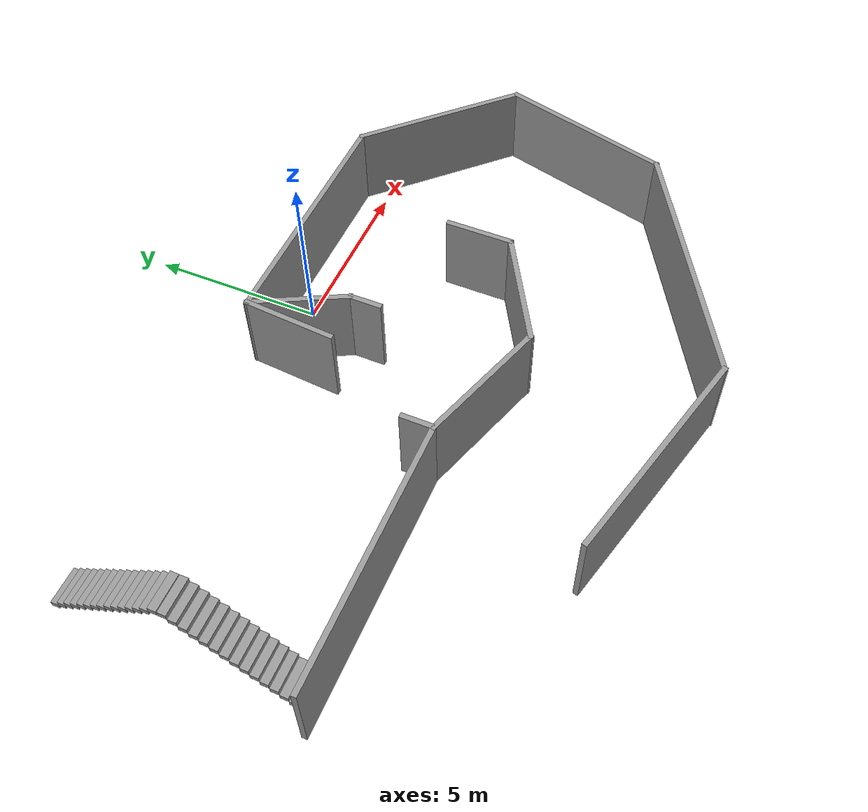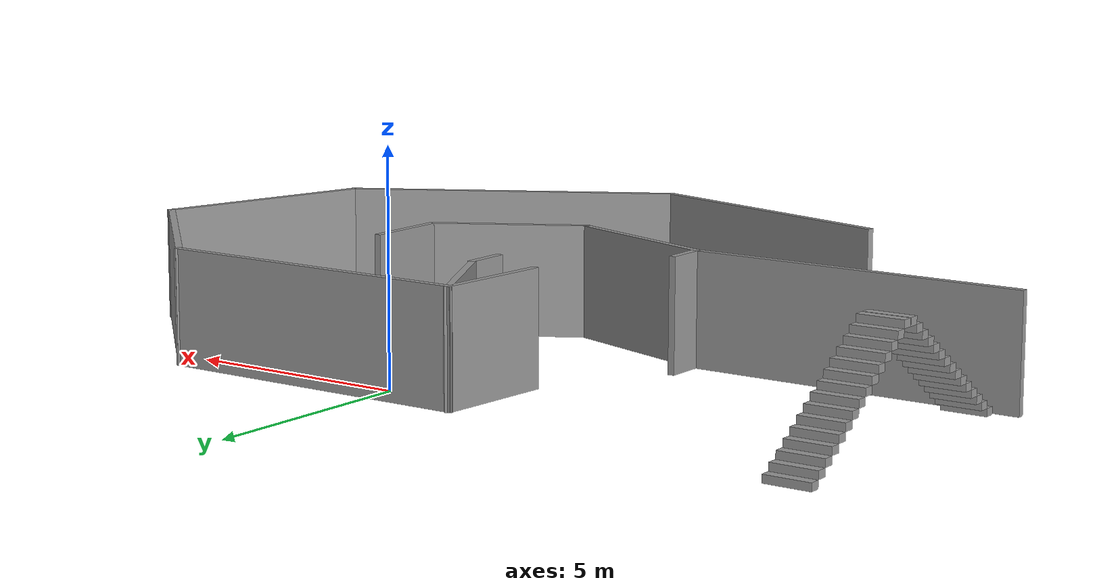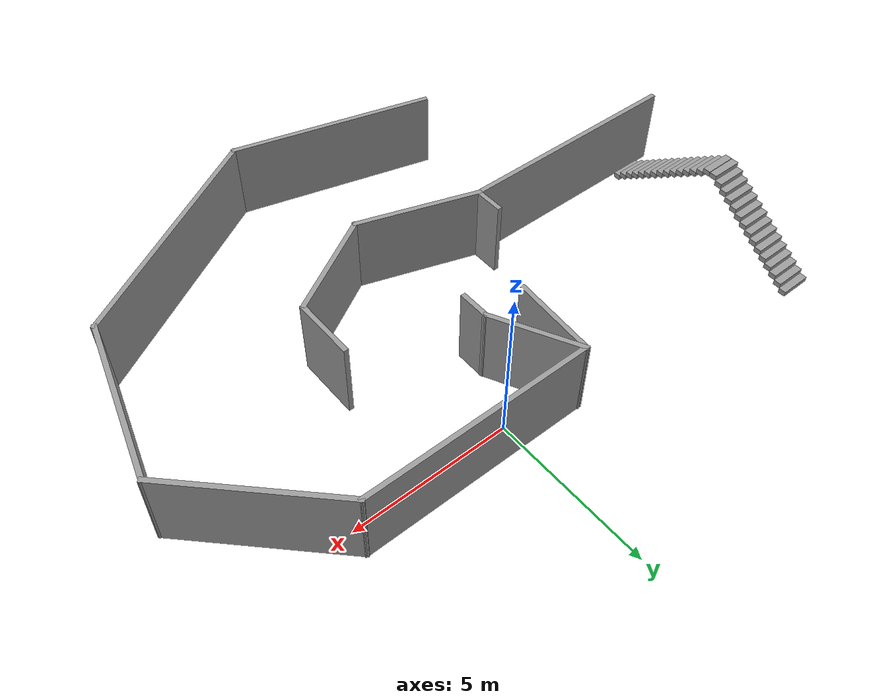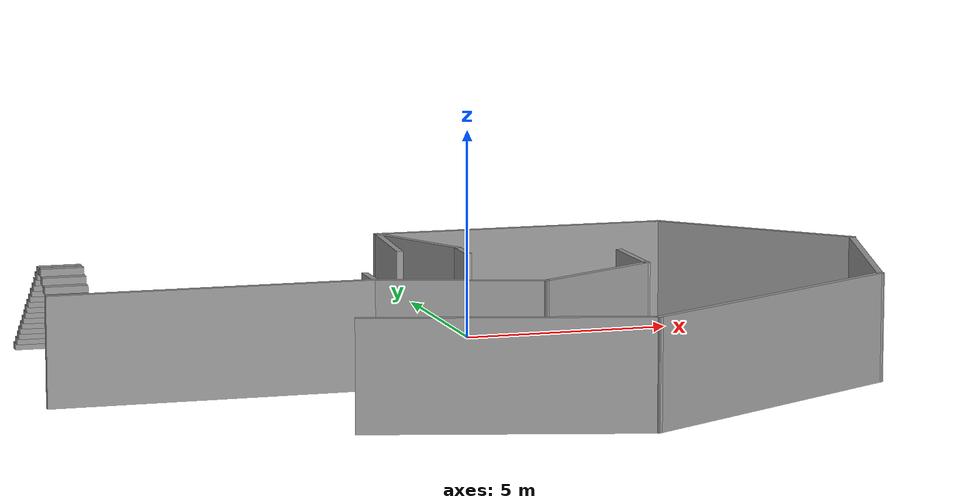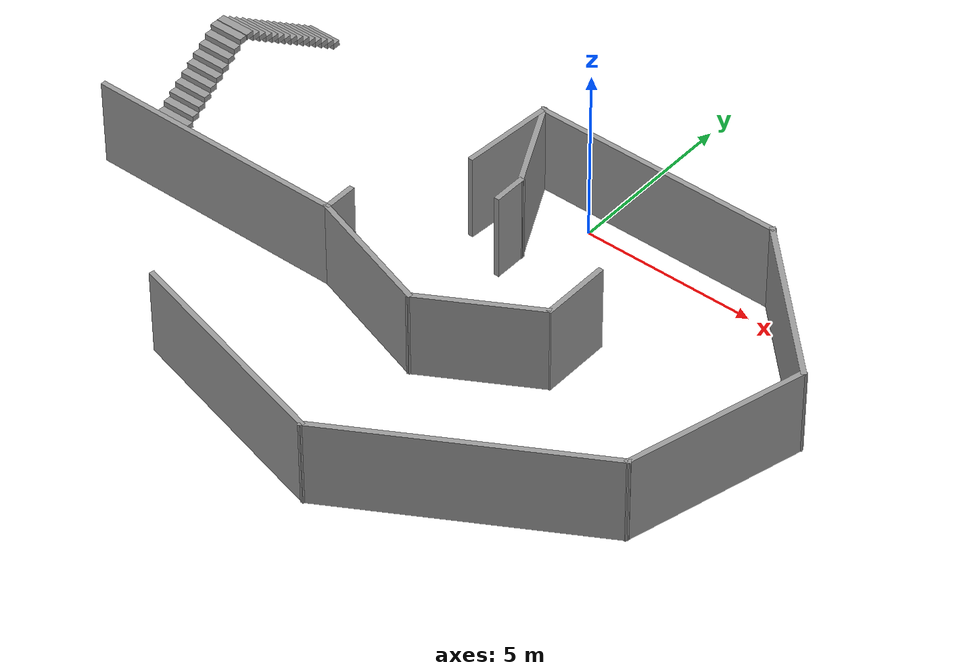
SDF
<?xml version='1.0'?>
<sdf version='1.6'>
  <model name='maze_loop'>
    <pose frame=''>-1.21134 -5.02746 0 0 -0 0</pose>
    <link name='Stairs_0'>
      <visual name='Stairs_0_Visual_0'>
        <pose frame=''>-8.96866 6.60079 0.083333 0 -0 0</pose>
        <geometry>
          <box>
            <size>1 0.233333 0.166667</size>
          </box>
        </geometry>
        <material>
          <script>
            <uri>file://media/materials/scripts/gazebo.material</uri>
            <name>Gazebo/Grey</name>
          </script>
          <ambient>1 1 1 1</ambient>
        </material>
        <meta>
          <layer>0</layer>
        </meta>
      </visual>
      <collision name='Stairs_0_Collision_0'>
        <geometry>
          <box>
            <size>1 0.233333 0.166667</size>
          </box>
        </geometry>
        <pose frame=''>-8.96866 6.60079 0.083333 0 -0 0</pose>
      </collision>
      <visual name='Stairs_0_Visual_1'>
        <pose frame=''>-8.96866 6.36746 0.25 0 -0 0</pose>
        <geometry>
          <box>
            <size>1 0.233333 0.166667</size>
          </box>
        </geometry>
        <material>
          <script>
            <uri>file://media/materials/scripts/gazebo.material</uri>
            <name>Gazebo/Grey</name>
          </script>
          <ambient>1 1 1 1</ambient>
        </material>
        <meta>
          <layer>0</layer>
        </meta>
      </visual>
      <collision name='Stairs_0_Collision_1'>
        <geometry>
          <box>
            <size>1 0.233333 0.166667</size>
          </box>
        </geometry>
        <pose frame=''>-8.96866 6.36746 0.25 0 -0 0</pose>
      </collision>
      <visual name='Stairs_0_Visual_2'>
        <pose frame=''>-8.96866 6.13413 0.416667 0 -0 0</pose>
        <geometry>
          <box>
            <size>1 0.233333 0.166667</size>
          </box>
        </geometry>
        <material>
          <script>
            <uri>file://media/materials/scripts/gazebo.material</uri>
            <name>Gazebo/Grey</name>
          </script>
          <ambient>1 1 1 1</ambient>
        </material>
        <meta>
          <layer>0</layer>
        </meta>
      </visual>
      <collision name='Stairs_0_Collision_2'>
        <geometry>
          <box>
            <size>1 0.233333 0.166667</size>
          </box>
        </geometry>
        <pose frame=''>-8.96866 6.13413 0.416667 0 -0 0</pose>
      </collision>
      <visual name='Stairs_0_Visual_3'>
        <pose frame=''>-8.96866 5.90079 0.583333 0 -0 0</pose>
        <geometry>
          <box>
            <size>1 0.233333 0.166667</size>
          </box>
        </geometry>
        <material>
          <script>
            <uri>file://media/materials/scripts/gazebo.material</uri>
            <name>Gazebo/Grey</name>
          </script>
          <ambient>1 1 1 1</ambient>
        </material>
        <meta>
          <layer>0</layer>
        </meta>
      </visual>
      <collision name='Stairs_0_Collision_3'>
        <geometry>
          <box>
            <size>1 0.233333 0.166667</size>
          </box>
        </geometry>
        <pose frame=''>-8.96866 5.90079 0.583333 0 -0 0</pose>
      </collision>
      <visual name='Stairs_0_Visual_4'>
        <pose frame=''>-8.96866 5.66746 0.75 0 -0 0</pose>
        <geometry>
          <box>
            <size>1 0.233333 0.166667</size>
          </box>
        </geometry>
        <material>
          <script>
            <uri>file://media/materials/scripts/gazebo.material</uri>
            <name>Gazebo/Grey</name>
          </script>
          <ambient>1 1 1 1</ambient>
        </material>
        <meta>
          <layer>0</layer>
        </meta>
      </visual>
      <collision name='Stairs_0_Collision_4'>
        <geometry>
          <box>
            <size>1 0.233333 0.166667</size>
          </box>
        </geometry>
        <pose frame=''>-8.96866 5.66746 0.75 0 -0 0</pose>
      </collision>
      <visual name='Stairs_0_Visual_5'>
        <pose frame=''>-8.96866 5.43413 0.916667 0 -0 0</pose>
        <geometry>
          <box>
            <size>1 0.233333 0.166667</size>
          </box>
        </geometry>
        <material>
          <script>
            <uri>file://media/materials/scripts/gazebo.material</uri>
            <name>Gazebo/Grey</name>
          </script>
          <ambient>1 1 1 1</ambient>
        </material>
        <meta>
          <layer>0</layer>
        </meta>
      </visual>
      <collision name='Stairs_0_Collision_5'>
        <geometry>
          <box>
            <size>1 0.233333 0.166667</size>
          </box>
        </geometry>
        <pose frame=''>-8.96866 5.43413 0.916667 0 -0 0</pose>
      </collision>
      <visual name='Stairs_0_Visual_6'>
        <pose frame=''>-8.96866 5.20079 1.08333 0 -0 0</pose>
        <geometry>
          <box>
            <size>1 0.233333 0.166667</size>
          </box>
        </geometry>
        <material>
          <script>
            <uri>file://media/materials/scripts/gazebo.material</uri>
            <name>Gazebo/Grey</name>
          </script>
          <ambient>1 1 1 1</ambient>
        </material>
        <meta>
          <layer>0</layer>
        </meta>
      </visual>
      <collision name='Stairs_0_Collision_6'>
        <geometry>
          <box>
            <size>1 0.233333 0.166667</size>
          </box>
        </geometry>
        <pose frame=''>-8.96866 5.20079 1.08333 0 -0 0</pose>
      </collision>
      <visual name='Stairs_0_Visual_7'>
        <pose frame=''>-8.96866 4.96746 1.25 0 -0 0</pose>
        <geometry>
          <box>
            <size>1 0.233333 0.166667</size>
          </box>
        </geometry>
        <material>
          <script>
            <uri>file://media/materials/scripts/gazebo.material</uri>
            <name>Gazebo/Grey</name>
          </script>
          <ambient>1 1 1 1</ambient>
        </material>
        <meta>
          <layer>0</layer>
        </meta>
      </visual>
      <collision name='Stairs_0_Collision_7'>
        <geometry>
          <box>
            <size>1 0.233333 0.166667</size>
          </box>
        </geometry>
        <pose frame=''>-8.96866 4.96746 1.25 0 -0 0</pose>
      </collision>
      <visual name='Stairs_0_Visual_8'>
        <pose frame=''>-8.96866 4.73413 1.41667 0 -0 0</pose>
        <geometry>
          <box>
            <size>1 0.233333 0.166667</size>
          </box>
        </geometry>
        <material>
          <script>
            <uri>file://media/materials/scripts/gazebo.material</uri>
            <name>Gazebo/Grey</name>
          </script>
          <ambient>1 1 1 1</ambient>
        </material>
        <meta>
          <layer>0</layer>
        </meta>
      </visual>
      <collision name='Stairs_0_Collision_8'>
        <geometry>
          <box>
            <size>1 0.233333 0.166667</size>
          </box>
        </geometry>
        <pose frame=''>-8.96866 4.73413 1.41667 0 -0 0</pose>
      </collision>
      <visual name='Stairs_0_Visual_9'>
        <pose frame=''>-8.96866 4.50079 1.58333 0 -0 0</pose>
        <geometry>
          <box>
            <size>1 0.233333 0.166667</size>
          </box>
        </geometry>
        <material>
          <script>
            <uri>file://media/materials/scripts/gazebo.material</uri>
            <name>Gazebo/Grey</name>
          </script>
          <ambient>1 1 1 1</ambient>
        </material>
        <meta>
          <layer>0</layer>
        </meta>
      </visual>
      <collision name='Stairs_0_Collision_9'>
        <geometry>
          <box>
            <size>1 0.233333 0.166667</size>
          </box>
        </geometry>
        <pose frame=''>-8.96866 4.50079 1.58333 0 -0 0</pose>
      </collision>
      <visual name='Stairs_0_Visual_10'>
        <pose frame=''>-8.96866 4.26746 1.75 0 -0 0</pose>
        <geometry>
          <box>
            <size>1 0.233333 0.166667</size>
          </box>
        </geometry>
        <material>
          <script>
            <uri>file://media/materials/scripts/gazebo.material</uri>
            <name>Gazebo/Grey</name>
          </script>
          <ambient>1 1 1 1</ambient>
        </material>
        <meta>
          <layer>0</layer>
        </meta>
      </visual>
      <collision name='Stairs_0_Collision_10'>
        <geometry>
          <box>
            <size>1 0.233333 0.166667</size>
          </box>
        </geometry>
        <pose frame=''>-8.96866 4.26746 1.75 0 -0 0</pose>
      </collision>
      <visual name='Stairs_0_Visual_11'>
        <pose frame=''>-8.96866 4.03413 1.91667 0 -0 0</pose>
        <geometry>
          <box>
            <size>1 0.233333 0.166667</size>
          </box>
        </geometry>
        <material>
          <script>
            <uri>file://media/materials/scripts/gazebo.material</uri>
            <name>Gazebo/Grey</name>
          </script>
          <ambient>1 1 1 1</ambient>
        </material>
        <meta>
          <layer>0</layer>
        </meta>
      </visual>
      <collision name='Stairs_0_Collision_11'>
        <geometry>
          <box>
            <size>1 0.233333 0.166667</size>
          </box>
        </geometry>
        <pose frame=''>-8.96866 4.03413 1.91667 0 -0 0</pose>
      </collision>
      <visual name='Stairs_0_Visual_12'>
        <pose frame=''>-8.96866 3.80079 2.08333 0 -0 0</pose>
        <geometry>
          <box>
            <size>1 0.233333 0.166667</size>
          </box>
        </geometry>
        <material>
          <script>
            <uri>file://media/materials/scripts/gazebo.material</uri>
            <name>Gazebo/Grey</name>
          </script>
          <ambient>1 1 1 1</ambient>
        </material>
        <meta>
          <layer>0</layer>
        </meta>
      </visual>
      <collision name='Stairs_0_Collision_12'>
        <geometry>
          <box>
            <size>1 0.233333 0.166667</size>
          </box>
        </geometry>
        <pose frame=''>-8.96866 3.80079 2.08333 0 -0 0</pose>
      </collision>
      <visual name='Stairs_0_Visual_13'>
        <pose frame=''>-8.96866 3.56746 2.25 0 -0 0</pose>
        <geometry>
          <box>
            <size>1 0.233333 0.166667</size>
          </box>
        </geometry>
        <material>
          <script>
            <uri>file://media/materials/scripts/gazebo.material</uri>
            <name>Gazebo/Grey</name>
          </script>
          <ambient>1 1 1 1</ambient>
        </material>
        <meta>
          <layer>0</layer>
        </meta>
      </visual>
      <collision name='Stairs_0_Collision_13'>
        <geometry>
          <box>
            <size>1 0.233333 0.166667</size>
          </box>
        </geometry>
        <pose frame=''>-8.96866 3.56746 2.25 0 -0 0</pose>
      </collision>
      <visual name='Stairs_0_Visual_14'>
        <pose frame=''>-8.96866 3.33413 2.41667 0 -0 0</pose>
        <geometry>
          <box>
            <size>1 0.233333 0.166667</size>
          </box>
        </geometry>
        <material>
          <script>
            <uri>file://media/materials/scripts/gazebo.material</uri>
            <name>Gazebo/Grey</name>
          </script>
          <ambient>1 1 1 1</ambient>
        </material>
        <meta>
          <layer>0</layer>
        </meta>
      </visual>
      <collision name='Stairs_0_Collision_14'>
        <geometry>
          <box>
            <size>1 0.233333 0.166667</size>
          </box>
        </geometry>
        <pose frame=''>-8.96866 3.33413 2.41667 0 -0 0</pose>
      </collision>
    </link>
    <link name='Stairs_1'>
      <visual name='Stairs_1_Visual_0'>
        <pose frame=''>-8.96866 -0.185874 0.083333 0 -0 -3.14159</pose>
        <geometry>
          <box>
            <size>1 0.233333 0.166667</size>
          </box>
        </geometry>
        <material>
          <script>
            <uri>file://media/materials/scripts/gazebo.material</uri>
            <name>Gazebo/Grey</name>
          </script>
          <ambient>1 1 1 1</ambient>
        </material>
        <meta>
          <layer>0</layer>
        </meta>
      </visual>
      <collision name='Stairs_1_Collision_0'>
        <geometry>
          <box>
            <size>1 0.233333 0.166667</size>
          </box>
        </geometry>
        <pose frame=''>-8.96866 -0.185874 0.083333 0 -0 -3.14159</pose>
      </collision>
      <visual name='Stairs_1_Visual_1'>
        <pose frame=''>-8.96866 0.047459 0.25 0 -0 -3.14159</pose>
        <geometry>
          <box>
            <size>1 0.233333 0.166667</size>
          </box>
        </geometry>
        <material>
          <script>
            <uri>file://media/materials/scripts/gazebo.material</uri>
            <name>Gazebo/Grey</name>
          </script>
          <ambient>1 1 1 1</ambient>
        </material>
        <meta>
          <layer>0</layer>
        </meta>
      </visual>
      <collision name='Stairs_1_Collision_1'>
        <geometry>
          <box>
            <size>1 0.233333 0.166667</size>
          </box>
        </geometry>
        <pose frame=''>-8.96866 0.047459 0.25 0 -0 -3.14159</pose>
      </collision>
      <visual name='Stairs_1_Visual_2'>
        <pose frame=''>-8.96866 0.280792 0.416667 0 -0 -3.14159</pose>
        <geometry>
          <box>
            <size>1 0.233333 0.166667</size>
          </box>
        </geometry>
        <material>
          <script>
            <uri>file://media/materials/scripts/gazebo.material</uri>
            <name>Gazebo/Grey</name>
          </script>
          <ambient>1 1 1 1</ambient>
        </material>
        <meta>
          <layer>0</layer>
        </meta>
      </visual>
      <collision name='Stairs_1_Collision_2'>
        <geometry>
          <box>
            <size>1 0.233333 0.166667</size>
          </box>
        </geometry>
        <pose frame=''>-8.96866 0.280792 0.416667 0 -0 -3.14159</pose>
      </collision>
      <visual name='Stairs_1_Visual_3'>
        <pose frame=''>-8.96866 0.514126 0.583333 0 -0 -3.14159</pose>
        <geometry>
          <box>
            <size>1 0.233333 0.166667</size>
          </box>
        </geometry>
        <material>
          <script>
            <uri>file://media/materials/scripts/gazebo.material</uri>
            <name>Gazebo/Grey</name>
          </script>
          <ambient>1 1 1 1</ambient>
        </material>
        <meta>
          <layer>0</layer>
        </meta>
      </visual>
      <collision name='Stairs_1_Collision_3'>
        <geometry>
          <box>
            <size>1 0.233333 0.166667</size>
          </box>
        </geometry>
        <pose frame=''>-8.96866 0.514126 0.583333 0 -0 -3.14159</pose>
      </collision>
      <visual name='Stairs_1_Visual_4'>
        <pose frame=''>-8.96866 0.74746 0.75 0 -0 -3.14159</pose>
        <geometry>
          <box>
            <size>1 0.233333 0.166667</size>
          </box>
        </geometry>
        <material>
          <script>
            <uri>file://media/materials/scripts/gazebo.material</uri>
            <name>Gazebo/Grey</name>
          </script>
          <ambient>1 1 1 1</ambient>
        </material>
        <meta>
          <layer>0</layer>
        </meta>
      </visual>
      <collision name='Stairs_1_Collision_4'>
        <geometry>
          <box>
            <size>1 0.233333 0.166667</size>
          </box>
        </geometry>
        <pose frame=''>-8.96866 0.74746 0.75 0 -0 -3.14159</pose>
      </collision>
      <visual name='Stairs_1_Visual_5'>
        <pose frame=''>-8.96866 0.980793 0.916667 0 -0 -3.14159</pose>
        <geometry>
          <box>
            <size>1 0.233333 0.166667</size>
          </box>
        </geometry>
        <material>
          <script>
            <uri>file://media/materials/scripts/gazebo.material</uri>
            <name>Gazebo/Grey</name>
          </script>
          <ambient>1 1 1 1</ambient>
        </material>
        <meta>
          <layer>0</layer>
        </meta>
      </visual>
      <collision name='Stairs_1_Collision_5'>
        <geometry>
          <box>
            <size>1 0.233333 0.166667</size>
          </box>
        </geometry>
        <pose frame=''>-8.96866 0.980793 0.916667 0 -0 -3.14159</pose>
      </collision>
      <visual name='Stairs_1_Visual_6'>
        <pose frame=''>-8.96866 1.21413 1.08333 0 -0 -3.14159</pose>
        <geometry>
          <box>
            <size>1 0.233333 0.166667</size>
          </box>
        </geometry>
        <material>
          <script>
            <uri>file://media/materials/scripts/gazebo.material</uri>
            <name>Gazebo/Grey</name>
          </script>
          <ambient>1 1 1 1</ambient>
        </material>
        <meta>
          <layer>0</layer>
        </meta>
      </visual>
      <collision name='Stairs_1_Collision_6'>
        <geometry>
          <box>
            <size>1 0.233333 0.166667</size>
          </box>
        </geometry>
        <pose frame=''>-8.96866 1.21413 1.08333 0 -0 -3.14159</pose>
      </collision>
      <visual name='Stairs_1_Visual_7'>
        <pose frame=''>-8.96866 1.44746 1.25 0 -0 -3.14159</pose>
        <geometry>
          <box>
            <size>1 0.233333 0.166667</size>
          </box>
        </geometry>
        <material>
          <script>
            <uri>file://media/materials/scripts/gazebo.material</uri>
            <name>Gazebo/Grey</name>
          </script>
          <ambient>1 1 1 1</ambient>
        </material>
        <meta>
          <layer>0</layer>
        </meta>
      </visual>
      <collision name='Stairs_1_Collision_7'>
        <geometry>
          <box>
            <size>1 0.233333 0.166667</size>
          </box>
        </geometry>
        <pose frame=''>-8.96866 1.44746 1.25 0 -0 -3.14159</pose>
      </collision>
      <visual name='Stairs_1_Visual_8'>
        <pose frame=''>-8.96866 1.68079 1.41667 0 -0 -3.14159</pose>
        <geometry>
          <box>
            <size>1 0.233333 0.166667</size>
          </box>
        </geometry>
        <material>
          <script>
            <uri>file://media/materials/scripts/gazebo.material</uri>
            <name>Gazebo/Grey</name>
          </script>
          <ambient>1 1 1 1</ambient>
        </material>
        <meta>
          <layer>0</layer>
        </meta>
      </visual>
      <collision name='Stairs_1_Collision_8'>
        <geometry>
          <box>
            <size>1 0.233333 0.166667</size>
          </box>
        </geometry>
        <pose frame=''>-8.96866 1.68079 1.41667 0 -0 -3.14159</pose>
      </collision>
      <visual name='Stairs_1_Visual_9'>
        <pose frame=''>-8.96866 1.91413 1.58333 0 -0 -3.14159</pose>
        <geometry>
          <box>
            <size>1 0.233333 0.166667</size>
          </box>
        </geometry>
        <material>
          <script>
            <uri>file://media/materials/scripts/gazebo.material</uri>
            <name>Gazebo/Grey</name>
          </script>
          <ambient>1 1 1 1</ambient>
        </material>
        <meta>
          <layer>0</layer>
        </meta>
      </visual>
      <collision name='Stairs_1_Collision_9'>
        <geometry>
          <box>
            <size>1 0.233333 0.166667</size>
          </box>
        </geometry>
        <pose frame=''>-8.96866 1.91413 1.58333 0 -0 -3.14159</pose>
      </collision>
      <visual name='Stairs_1_Visual_10'>
        <pose frame=''>-8.96866 2.14746 1.75 0 -0 -3.14159</pose>
        <geometry>
          <box>
            <size>1 0.233333 0.166667</size>
          </box>
        </geometry>
        <material>
          <script>
            <uri>file://media/materials/scripts/gazebo.material</uri>
            <name>Gazebo/Grey</name>
          </script>
          <ambient>1 1 1 1</ambient>
        </material>
        <meta>
          <layer>0</layer>
        </meta>
      </visual>
      <collision name='Stairs_1_Collision_10'>
        <geometry>
          <box>
            <size>1 0.233333 0.166667</size>
          </box>
        </geometry>
        <pose frame=''>-8.96866 2.14746 1.75 0 -0 -3.14159</pose>
      </collision>
      <visual name='Stairs_1_Visual_11'>
        <pose frame=''>-8.96866 2.38079 1.91667 0 -0 -3.14159</pose>
        <geometry>
          <box>
            <size>1 0.233333 0.166667</size>
          </box>
        </geometry>
        <material>
          <script>
            <uri>file://media/materials/scripts/gazebo.material</uri>
            <name>Gazebo/Grey</name>
          </script>
          <ambient>1 1 1 1</ambient>
        </material>
        <meta>
          <layer>0</layer>
        </meta>
      </visual>
      <collision name='Stairs_1_Collision_11'>
        <geometry>
          <box>
            <size>1 0.233333 0.166667</size>
          </box>
        </geometry>
        <pose frame=''>-8.96866 2.38079 1.91667 0 -0 -3.14159</pose>
      </collision>
      <visual name='Stairs_1_Visual_12'>
        <pose frame=''>-8.96866 2.61413 2.08333 0 -0 -3.14159</pose>
        <geometry>
          <box>
            <size>1 0.233333 0.166667</size>
          </box>
        </geometry>
        <material>
          <script>
            <uri>file://media/materials/scripts/gazebo.material</uri>
            <name>Gazebo/Grey</name>
          </script>
          <ambient>1 1 1 1</ambient>
        </material>
        <meta>
          <layer>0</layer>
        </meta>
      </visual>
      <collision name='Stairs_1_Collision_12'>
        <geometry>
          <box>
            <size>1 0.233333 0.166667</size>
          </box>
        </geometry>
        <pose frame=''>-8.96866 2.61413 2.08333 0 -0 -3.14159</pose>
      </collision>
      <visual name='Stairs_1_Visual_13'>
        <pose frame=''>-8.96866 2.84746 2.25 0 -0 -3.14159</pose>
        <geometry>
          <box>
            <size>1 0.233333 0.166667</size>
          </box>
        </geometry>
        <material>
          <script>
            <uri>file://media/materials/scripts/gazebo.material</uri>
            <name>Gazebo/Grey</name>
          </script>
          <ambient>1 1 1 1</ambient>
        </material>
        <meta>
          <layer>0</layer>
        </meta>
      </visual>
      <collision name='Stairs_1_Collision_13'>
        <geometry>
          <box>
            <size>1 0.233333 0.166667</size>
          </box>
        </geometry>
        <pose frame=''>-8.96866 2.84746 2.25 0 -0 -3.14159</pose>
      </collision>
      <visual name='Stairs_1_Visual_14'>
        <pose frame=''>-8.96866 3.08079 2.41667 0 -0 -3.14159</pose>
        <geometry>
          <box>
            <size>1 0.233333 0.166667</size>
          </box>
        </geometry>
        <material>
          <script>
            <uri>file://media/materials/scripts/gazebo.material</uri>
            <name>Gazebo/Grey</name>
          </script>
          <ambient>1 1 1 1</ambient>
        </material>
        <meta>
          <layer>0</layer>
        </meta>
      </visual>
      <collision name='Stairs_1_Collision_14'>
        <geometry>
          <box>
            <size>1 0.233333 0.166667</size>
          </box>
        </geometry>
        <pose frame=''>-8.96866 3.08079 2.41667 0 -0 -3.14159</pose>
      </collision>
    </link>
    <link name='Wall_0'>
      <collision name='Wall_0_Collision'>
        <geometry>
          <box>
            <size>2.7263 0.15 2.5</size>
          </box>
        </geometry>
        <pose frame=''>0 0 1.25 0 -0 0</pose>
      </collision>
      <visual name='Wall_0_Visual'>
        <pose frame=''>0 0 1.25 0 -0 0</pose>
        <geometry>
          <box>
            <size>2.7263 0.15 2.5</size>
          </box>
        </geometry>
        <material>
          <script>
            <uri>file://media/materials/scripts/gazebo.material</uri>
            <name>Gazebo/Grey</name>
          </script>
          <ambient>1 1 1 1</ambient>
        </material>
        <meta>
          <layer>0</layer>
        </meta>
      </visual>
      <pose frame=''>-0.908655 4.44246 0 0 -0 1.50087</pose>
    </link>
    <link name='Wall_10'>
      <collision name='Wall_10_Collision'>
        <geometry>
          <box>
            <size>2 0.15 2.5</size>
          </box>
        </geometry>
        <pose frame=''>0 0 1.25 0 -0 0</pose>
      </collision>
      <visual name='Wall_10_Visual'>
        <pose frame=''>0 0 1.25 0 -0 0</pose>
        <geometry>
          <box>
            <size>2 0.15 2.5</size>
          </box>
        </geometry>
        <material>
          <script>
            <uri>file://media/materials/scripts/gazebo.material</uri>
            <name>Gazebo/Grey</name>
          </script>
          <ambient>1 1 1 1</ambient>
        </material>
        <meta>
          <layer>0</layer>
        </meta>
      </visual>
      <pose frame=''>3.99134 0.962459 0 0 -0 1.5708</pose>
    </link>
    <link name='Wall_12'>
      <collision name='Wall_12_Collision'>
        <geometry>
          <box>
            <size>7.25 0.15 2.5</size>
          </box>
        </geometry>
        <pose frame=''>0 0 1.25 0 -0 0</pose>
      </collision>
      <visual name='Wall_12_Visual'>
        <pose frame=''>0 0 1.25 0 -0 0</pose>
        <geometry>
          <box>
            <size>7.25 0.15 2.5</size>
          </box>
        </geometry>
        <material>
          <script>
            <uri>file://media/materials/scripts/gazebo.material</uri>
            <name>Gazebo/Grey</name>
          </script>
          <ambient>1 1 1 1</ambient>
        </material>
        <meta>
          <layer>0</layer>
        </meta>
      </visual>
      <pose frame=''>2.73135 5.71746 0 0 -0 0</pose>
    </link>
    <link name='Wall_16'>
      <collision name='Wall_16_Collision'>
        <geometry>
          <box>
            <size>3.95755 0.15 2.5</size>
          </box>
        </geometry>
        <pose frame=''>0 0 1.25 0 -0 0</pose>
      </collision>
      <visual name='Wall_16_Visual'>
        <pose frame=''>0 0 1.25 0 -0 0</pose>
        <geometry>
          <box>
            <size>3.95755 0.15 2.5</size>
          </box>
        </geometry>
        <material>
          <script>
            <uri>file://media/materials/scripts/gazebo.material</uri>
            <name>Gazebo/Grey</name>
          </script>
          <ambient>1 1 1 1</ambient>
        </material>
        <meta>
          <layer>0</layer>
        </meta>
      </visual>
      <pose frame=''>-0.761075 -1.07004 0 0 -0 -0.319246</pose>
    </link>
    <link name='Wall_17'>
      <collision name='Wall_17_Collision'>
        <geometry>
          <box>
            <size>3.5 0.15 2.5</size>
          </box>
        </geometry>
        <pose frame=''>0 0 1.25 0 -0 0</pose>
      </collision>
      <visual name='Wall_17_Visual'>
        <pose frame=''>0 0 1.25 0 -0 0</pose>
        <geometry>
          <box>
            <size>3.5 0.15 2.5</size>
          </box>
        </geometry>
        <material>
          <script>
            <uri>file://media/materials/scripts/gazebo.material</uri>
            <name>Gazebo/Grey</name>
          </script>
          <ambient>1 1 1 1</ambient>
        </material>
        <meta>
          <layer>0</layer>
        </meta>
      </visual>
      <pose frame=''>2.4971 -0.830041 0 0 -0 0.523599</pose>
    </link>
    <link name='Wall_19'>
      <collision name='Wall_19_Collision'>
        <geometry>
          <box>
            <size>5.25 0.15 2.5</size>
          </box>
        </geometry>
        <pose frame=''>0 0 1.25 0 -0 0</pose>
      </collision>
      <visual name='Wall_19_Visual'>
        <pose frame=''>0 0 1.25 0 -0 0</pose>
        <geometry>
          <box>
            <size>5.25 0.15 2.5</size>
          </box>
        </geometry>
        <material>
          <script>
            <uri>file://media/materials/scripts/gazebo.material</uri>
            <name>Gazebo/Grey</name>
          </script>
          <ambient>1 1 1 1</ambient>
        </material>
        <meta>
          <layer>0</layer>
        </meta>
      </visual>
      <pose frame=''>8.08447 3.91434 0 0 -0 -0.785398</pose>
    </link>
    <link name='Wall_2'>
      <collision name='Wall_2_Collision'>
        <geometry>
          <box>
            <size>1 0.15 2.5</size>
          </box>
        </geometry>
        <pose frame=''>0 0 1.25 0 -0 0</pose>
      </collision>
      <visual name='Wall_2_Visual'>
        <pose frame=''>0 0 1.25 0 -0 0</pose>
        <geometry>
          <box>
            <size>1 0.15 2.5</size>
          </box>
        </geometry>
        <material>
          <script>
            <uri>file://media/materials/scripts/gazebo.material</uri>
            <name>Gazebo/Grey</name>
          </script>
          <ambient>1 1 1 1</ambient>
        </material>
        <meta>
          <layer>0</layer>
        </meta>
      </visual>
      <pose frame=''>-2.55865 -0.04754 0 0 -0 1.5708</pose>
    </link>
    <link name='Wall_21'>
      <collision name='Wall_21_Collision'>
        <geometry>
          <box>
            <size>5.25 0.15 2.5</size>
          </box>
        </geometry>
        <pose frame=''>0 0 1.25 0 -0 0</pose>
      </collision>
      <visual name='Wall_21_Visual'>
        <pose frame=''>0 0 1.25 0 -0 0</pose>
        <geometry>
          <box>
            <size>5.25 0.15 2.5</size>
          </box>
        </geometry>
        <material>
          <script>
            <uri>file://media/materials/scripts/gazebo.material</uri>
            <name>Gazebo/Grey</name>
          </script>
          <ambient>1 1 1 1</ambient>
        </material>
        <meta>
          <layer>0</layer>
        </meta>
      </visual>
      <pose frame=''>9.2276 -0.351896 0 0 -0 -1.8326</pose>
    </link>
    <link name='Wall_23'>
      <collision name='Wall_23_Collision'>
        <geometry>
          <box>
            <size>7.75 0.15 2.5</size>
          </box>
        </geometry>
        <pose frame=''>0 0 1.25 0 -0 0</pose>
      </collision>
      <visual name='Wall_23_Visual'>
        <pose frame=''>0 0 1.25 0 -0 0</pose>
        <geometry>
          <box>
            <size>7.75 0.15 2.5</size>
          </box>
        </geometry>
        <material>
          <script>
            <uri>file://media/materials/scripts/gazebo.material</uri>
            <name>Gazebo/Grey</name>
          </script>
          <ambient>1 1 1 1</ambient>
        </material>
        <meta>
          <layer>0</layer>
        </meta>
      </visual>
      <pose frame=''>5.27672 -4.71501 0 0 -0 -2.61799</pose>
    </link>
    <link name='Wall_24'>
      <collision name='Wall_24_Collision'>
        <geometry>
          <box>
            <size>6.5 0.15 2.5</size>
          </box>
        </geometry>
        <pose frame=''>0 0 1.25 0 -0 0</pose>
      </collision>
      <visual name='Wall_24_Visual'>
        <pose frame=''>0 0 1.25 0 -0 0</pose>
        <geometry>
          <box>
            <size>6.5 0.15 2.5</size>
          </box>
        </geometry>
        <material>
          <script>
            <uri>file://media/materials/scripts/gazebo.material</uri>
            <name>Gazebo/Grey</name>
          </script>
          <ambient>1 1 1 1</ambient>
        </material>
        <meta>
          <layer>0</layer>
        </meta>
      </visual>
      <pose frame=''>-1.08099 -5.79326 0 0 -0 2.87979</pose>
    </link>
    <link name='Wall_26'>
      <collision name='Wall_26_Collision'>
        <geometry>
          <box>
            <size>7.5 0.15 2.5</size>
          </box>
        </geometry>
        <pose frame=''>0 0 1.25 0 -0 0</pose>
      </collision>
      <visual name='Wall_26_Visual'>
        <pose frame=''>0 0 1.25 0 -0 0</pose>
        <geometry>
          <box>
            <size>7.5 0.15 2.5</size>
          </box>
        </geometry>
        <material>
          <script>
            <uri>file://media/materials/scripts/gazebo.material</uri>
            <name>Gazebo/Grey</name>
          </script>
          <ambient>1 1 1 1</ambient>
        </material>
        <meta>
          <layer>0</layer>
        </meta>
      </visual>
      <pose frame=''>-6.24366 -0.472541 0 0 -0 3.14159</pose>
    </link>
    <link name='Wall_4'>
      <collision name='Wall_4_Collision'>
        <geometry>
          <box>
            <size>1 0.15 2.5</size>
          </box>
        </geometry>
        <pose frame=''>0 0 1.25 0 -0 0</pose>
      </collision>
      <visual name='Wall_4_Visual'>
        <pose frame=''>0 0 1.25 0 -0 0</pose>
        <geometry>
          <box>
            <size>1 0.15 2.5</size>
          </box>
        </geometry>
        <material>
          <script>
            <uri>file://media/materials/scripts/gazebo.material</uri>
            <name>Gazebo/Grey</name>
          </script>
          <ambient>1 1 1 1</ambient>
        </material>
        <meta>
          <layer>0</layer>
        </meta>
      </visual>
      <pose frame=''>0.441345 2.84246 0 0 -0 -1.5708</pose>
    </link>
    <link name='Wall_6'>
      <collision name='Wall_6_Collision'>
        <geometry>
          <box>
            <size>2.91391 0.15 2.5</size>
          </box>
        </geometry>
        <pose frame=''>0 0 1.25 0 -0 0</pose>
      </collision>
      <visual name='Wall_6_Visual'>
        <pose frame=''>0 0 1.25 0 -0 0</pose>
        <geometry>
          <box>
            <size>2.91391 0.15 2.5</size>
          </box>
        </geometry>
        <material>
          <script>
            <uri>file://media/materials/scripts/gazebo.material</uri>
            <name>Gazebo/Grey</name>
          </script>
          <ambient>1 1 1 1</ambient>
        </material>
        <meta>
          <layer>0</layer>
        </meta>
      </visual>
      <pose frame=''>-0.188655 4.49746 0 0 -0 -1.09744</pose>
    </link>
    <static>1</static>
  </model>
</sdf>
